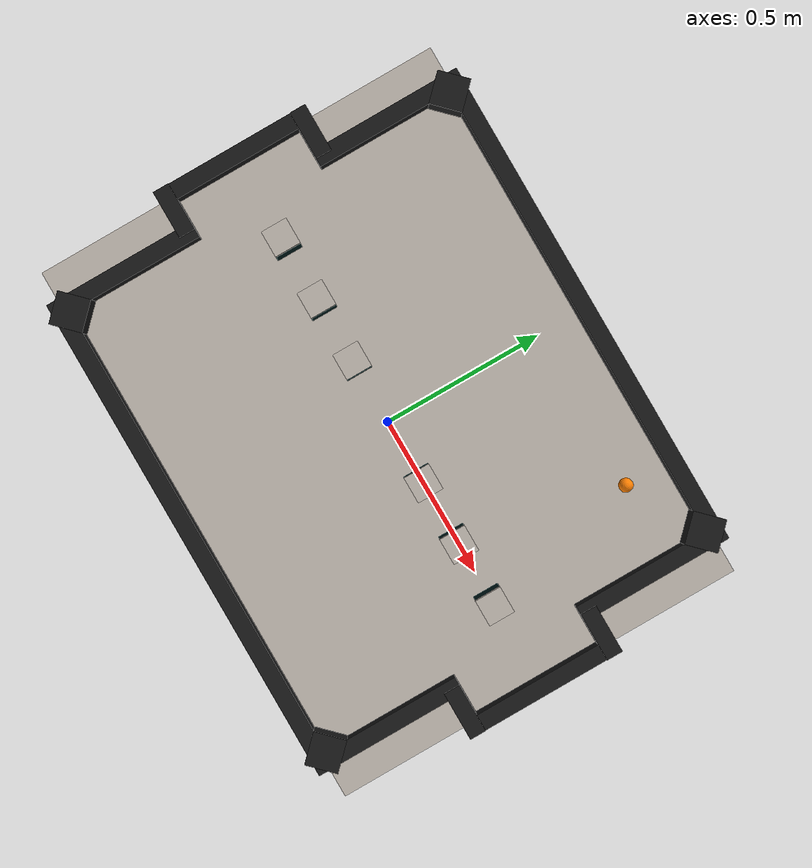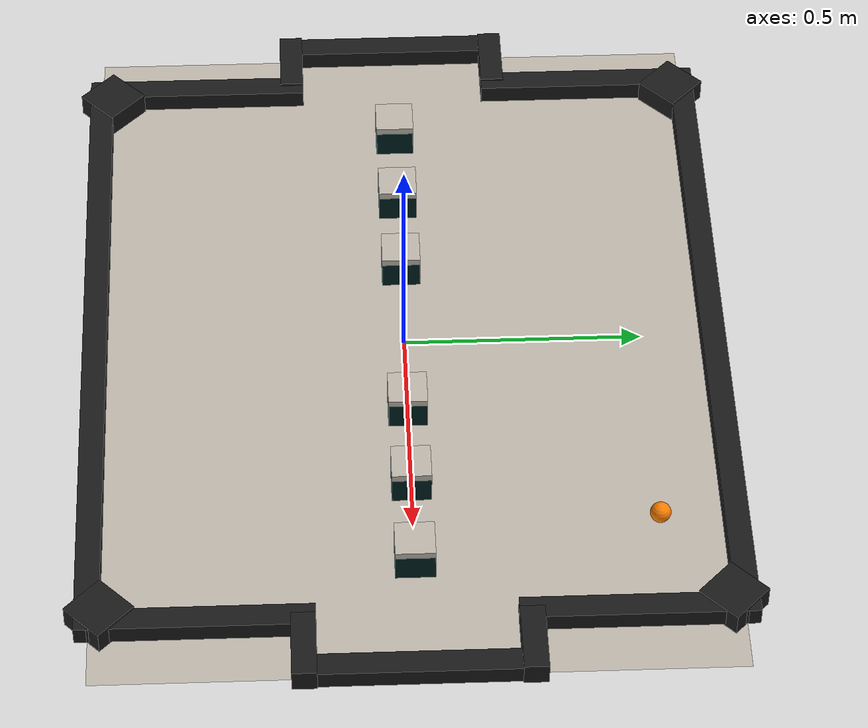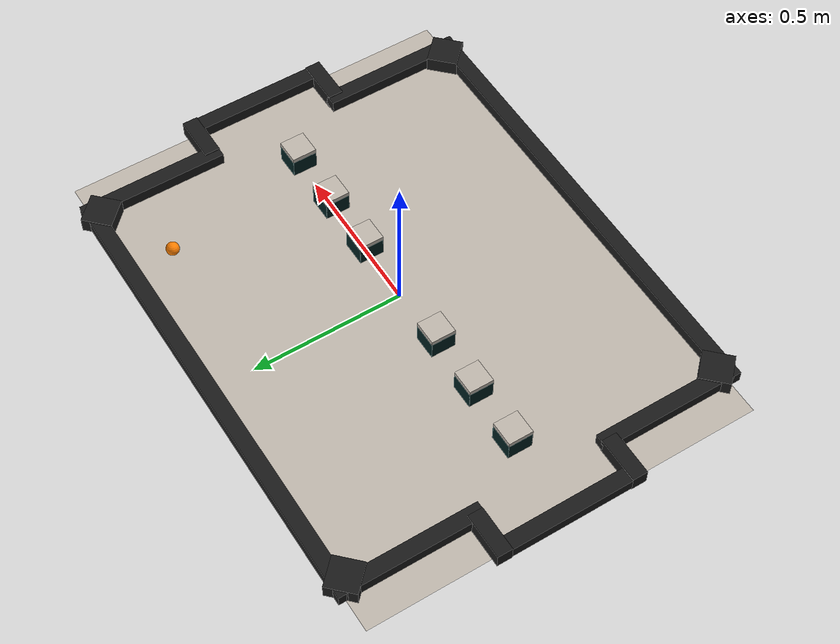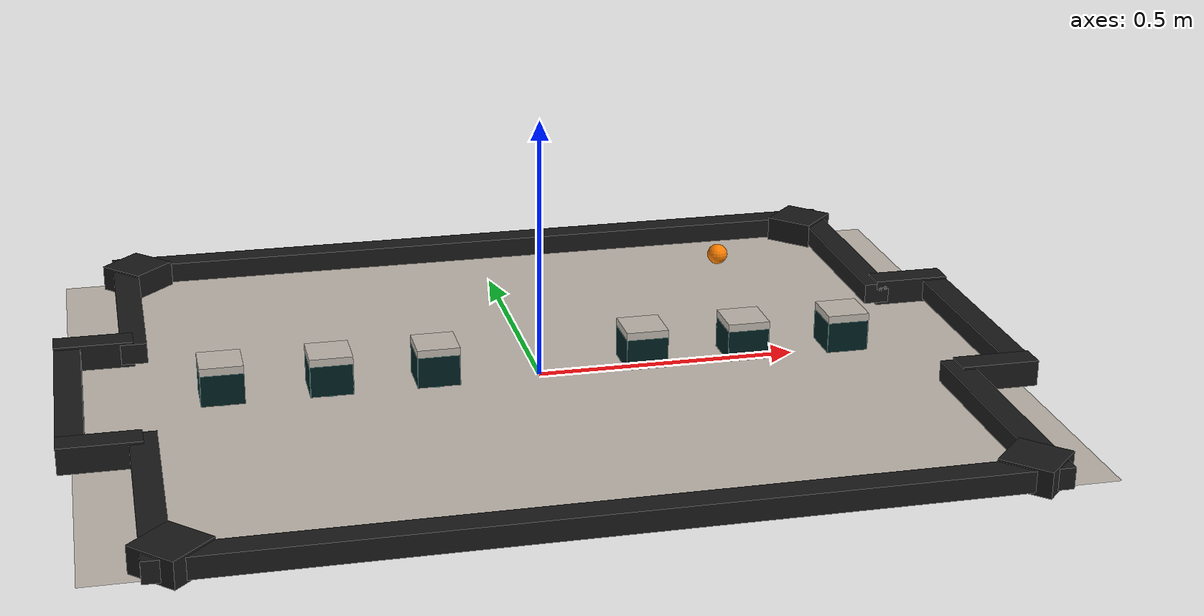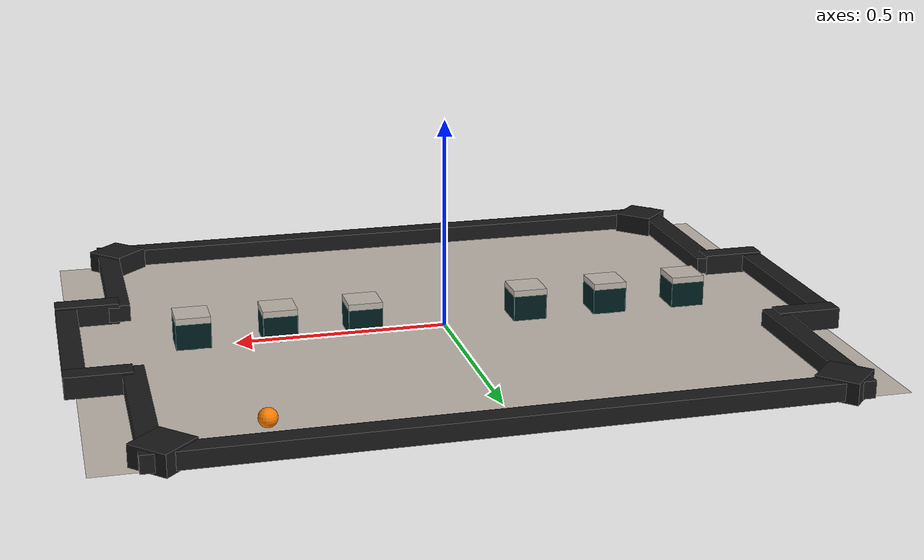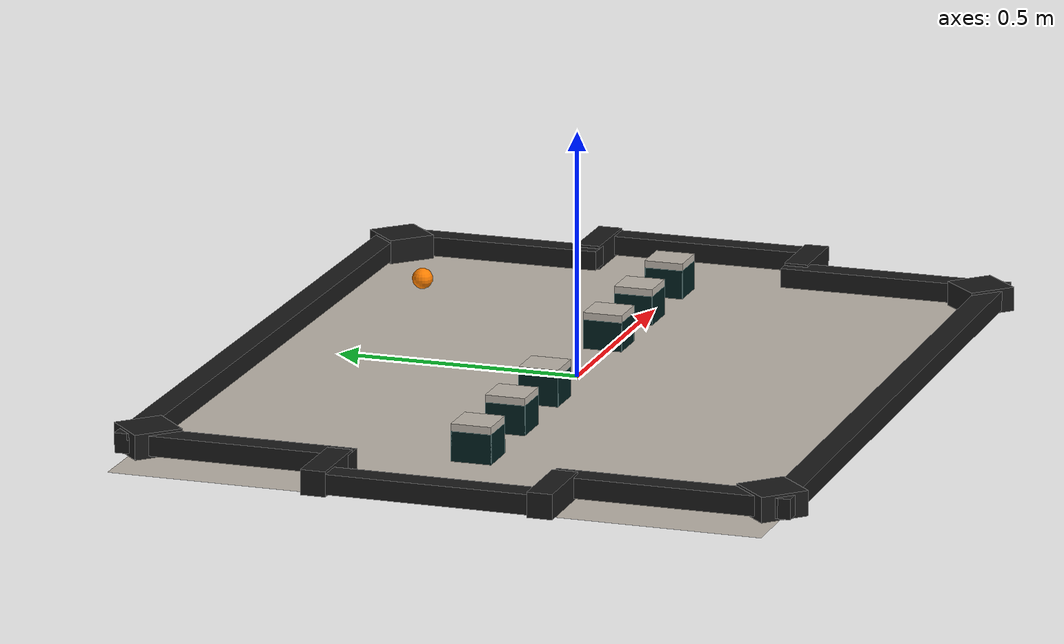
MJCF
<?xml version="1.0" encoding="utf-8"?>
<mujoco>
  <compiler angle="radian" inertiafromgeom="auto"/>
  <option timestep="0.001"/>
  <size njmax="800" nconmax="200"/>
  <default>
    <geom condim="3"/>
  </default>

  <asset>
    <texture name="Field" file="textures/Field.png" gridsize="1 1" builtin="none" type="2d"/>
    <texture name="Tag1" builtin="none" type="cube" fileright="textures/Black.png" fileleft="textures/Black.png" fileup="textures/Black.png"
    filedown="textures/Black.png" filefront="textures/Ytag1.png" fileback="textures/Black.png" />
    <texture name="Tag2" builtin="none" type="cube" fileright="textures/Black.png" fileleft="textures/Black.png" fileup="textures/Black.png"
    filedown="textures/Black.png" filefront="textures/Ytag2.png" fileback="textures/Black.png" />
    <texture name="Tag3" builtin="none" type="cube" fileright="textures/Black.png" fileleft="textures/Black.png" fileup="textures/Black.png"
    filedown="textures/Black.png" filefront="textures/Ytag3.png" fileback="textures/Black.png" />
    <texture name="Tag4" builtin="none" type="cube" fileright="textures/Btag1.png" fileleft="textures/Black.png" fileup="textures/Black.png"
    filedown="textures/Black.png" filefront="textures/Btag1.png" fileback="textures/Black.png" />
    <texture name="Tag5" builtin="none" type="cube" fileright="textures/Black.png" fileleft="textures/Black.png" fileup="textures/Black.png"
    filedown="textures/Black.png" filefront="textures/Btag2.png" fileback="textures/Black.png" />
    <texture name="Tag6" builtin="none" type="cube" fileright="textures/Black.png" fileleft="textures/Black.png" fileup="textures/Black.png"
    filedown="textures/Black.png" filefront="textures/Btag3.png" fileback="textures/Black.png" />
    <texture name="bodytex" builtin="none" type="cube" file="textures/Black.png"/>
    <material name="field_paint" rgba="1 1 1 1" specular="0" emission="0" texture="Field" shininess="0.2"/>
    <material name="wall_material" rgba="0.1 0.1 0.1 1" emission="0" shininess="0.2"/>
    <material name="body" rgba="0 1 1 1" texture="bodytex" shininess="0"/>
    <material name="tag01" rgba="1 1 1 1" texture="Tag1" emission="0" shininess="0.2"/>
    <material name="tag02" rgba="1 1 1 1" texture="Tag2" emission="0" shininess="0.2"/>
    <material name="tag03" rgba="1 1 1 1" texture="Tag3" emission="0" shininess="0.2"/>
    <material name="tag04" rgba="1 1 1 1" texture="Tag4" emission="0" shininess="0.2"/>
    <material name="tag05" rgba="1 1 1 1" texture="Tag5" emission="0" shininess="0.2"/>
    <material name="tag06" rgba="1 1 1 1" texture="Tag6" emission="0" shininess="0.2"/>
    <material name="ball_surf" rgba="1 0.5 0 1" emission="0.3" shininess="0.8"/>
  </asset>

  <!--PISTA-->
  <worldbody>
    <geom conaffinity="1" contype="0" name="field" pos="0 0 0" size="0.875 0.65 10" material="field_paint" type="plane"/>
    <geom conaffinity="1" contype="0" name="upper_wall" pos="0 0.65 0.025" size="0.775 0.025 0.02"  material="wall_material" type="box"/>
    <geom conaffinity="1" contype="0" name="lower_wall" pos="0 -0.65 0.025" size="0.775 0.025 0.02" material="wall_material" type="box"/>
    <geom conaffinity="1" contype="0" name="left_goal" pos="-0.875 0 0.025" size="0.025 0.2 0.02" material="wall_material" type="box"/>
    <geom conaffinity="1" contype="0" name="right_goal" pos="0.875 0 0.025" size="0.025 0.2 0.02" material="wall_material" type="box"/>
    <geom conaffinity="1" contype="0" name="upper_right_corner" pos="0.75 0.425 0.025" size="0.025 0.225 0.02" material="wall_material" type="box"/>
    <geom conaffinity="1" contype="0" name="lower_right_corner" pos="0.75 -0.425 0.025" size="0.025 0.225 0.02" material="wall_material" type="box"/>
    <geom conaffinity="1" contype="0" name="upper_left_corner" pos="-0.75 0.425 0.025" size="0.025 0.225 0.02" material="wall_material" type="box"/>
    <geom conaffinity="1" contype="0" name="lower_left_corner" pos="-0.75 -0.425 0.025" size="0.025 0.225 0.02" material="wall_material" type="box"/>
    <geom conaffinity="1" contype="0" name="upper_right_pole" pos="0.825 0.225 0.025" size="0.075 0.025 0.025" material="wall_material" type="box"/>
    <geom conaffinity="1" contype="0" name="lower_right_pole" pos="0.825 -0.225 0.025" size="0.075 0.025 0.025" material="wall_material" type="box"/>
    <geom conaffinity="1" contype="0" name="upper_left_pole" pos="-0.825 0.225 0.025" size="0.075 0.025 0.025" material="wall_material" type="box"/>
    <geom conaffinity="1" contype="0" name="lower_left_pole" pos="-0.825 -0.225 0.025" size="0.075 0.025 0.025" material="wall_material" type="box"/>
    <geom conaffinity="1" contype="0" name="lower_left_triangle" pos="-0.725 -0.625 0.025" axisangle="0 0 1 0.785398163" size="0.04949747468 0.04949747468 0.025" material="wall_material" type="box"/>
    <geom conaffinity="1" contype="0" name="upper_left_triangle" pos="-0.725 0.625 0.025" axisangle="0 0 1 0.785398163" size="0.04949747468 0.04949747468 0.025" material="wall_material" type="box"/>
    <geom conaffinity="1" contype="0" name="lower_right_triangle" pos="0.725 -0.625 0.025" axisangle="0 0 1 0.785398163" size="0.04949747468 0.04949747468 0.025" material="wall_material" type="box"/>
    <geom conaffinity="1" contype="0" name="upper_right_triangle" pos="0.725 0.625 0.025" axisangle="0 0 1 0.785398163" size="0.04949747468 0.04949747468 0.025" material="wall_material" type="box"/>

  </worldbody>
  <!--PISTA-->

  <!--LUZES-->
  <worldbody>
    <light name="light_01" mode="fixed" pos="0.8 0 2" dir="-0.75 0 -1" cutoff="45"/>
    <light name="light_02" mode="fixed" pos="-0.8 0 2" dir="0.75 0 -1" cutoff="45"/>
  </worldbody>
  <!--LUZES-->

  <!--CAMERA-->
  <worldbody>
    <camera name="camera" mode="fixed" pos="0 0 2" fovy="38.58"/>
  </worldbody>
  <!--CAMERA-->

  <!--BOLA-->
  <worldbody>
    <body name="ball" pos="0.5 0.5 0.022">
      <joint type="free" name="Ball"/>
      <inertial pos="0 0 0" mass="46" diaginertia="0.008387134 0.008387134 0.008387134"/>
      <geom conaffinity="1" contype="1" size="0.02135" material="ball_surf" type="sphere"/>
    </body>
  </worldbody>
  <!--BOLA-->

  <!--ROBOS-->
  <worldbody>
    <body name="robot_01" pos="-0.2 0 0.04">
      <joint type="free" name="Robot_01"/>
      <inertial pos="0 0 -0.02" mass="396" diaginertia="0.132 0.2244 0.33"/>
      <geom conaffinity="1" contype="1"  size="0.04 0.03 0.03" rgba="0 0 1 1" type="box"/>
      <body name="left_wheel_01" pos="0 0.035 -0.002" quat="0.707141 0.707073 0 0" >
        <joint name="left_wheel_joint_01" pos="0 0 0" axis="0 0 -1" type="hinge"/>
        <inertial pos="0 0 0" mass="12" diaginertia="0.002736 0.002736 0.0054"/>
        <geom conaffinity="1" contype="1" size="0.03 0.003" rgba="0 1 1 1" type="cylinder"/>
      </body>
      <body name="right_wheel_01" pos="0 -0.035 -0.002" quat="0.707141 0.707073 0 0" >
        <joint name="right_wheel_joint_01" pos="0 0 0" axis="0 0 -1" type="hinge"/>
        <inertial pos="0 0 0" mass="12" diaginertia="0.002736 0.002736 0.0054"/>
        <geom conaffinity="1" contype="1" size="0.03 0.003" rgba="0 1 1 1" type="cylinder"/>
      </body>
      <body name="uniform_01" pos="0 0 0.0375">
        <geom name="hat01" conaffinity="1" contype="1" size="0.0405 0.0405 0.0075" material="tag01" type="box"/>
        <body name="front_01" pos="0.04 0 -0.0375">
          <geom conaffinity="1" contype="1" size="0.0005 0.0405 0.03" material="body" type="box"/>
        </body>
        <body name="back_01" pos="-0.04 0 -0.0375">
          <geom conaffinity="1" contype="1" size="0.0005 0.0405 0.03" material="body" type="box"/>
        </body>
        <body name="left_01" pos="0 0.04 -0.0375">
          <geom conaffinity="1" contype="1" size="0.0405 0.0005 0.03" material="body" type="box"/>
        </body>
        <body name="right_01" pos="0 -0.04 -0.0375">
          <geom conaffinity="1" contype="1" size="0.0405 0.0005 0.03" material="body" type="box"/>
        </body>
      </body>
    </body>
  </worldbody>

  <worldbody>
    <body name="robot_02" pos="-0.4 0 0.04">
      <joint type="free" name="Robot_02"/>
      <inertial pos="0 0 -0.02" mass="396" diaginertia="0.132 0.2244 0.33"/>
      <geom conaffinity="1" contype="1" size="0.04 0.03 0.03" rgba="0 0 1 1" type="box"/>
      <body name="left_wheel_02" pos="0 0.035 -0.002" quat="0.707141 0.707073 0 0" >
        <joint name="left_wheel_joint_02" pos="0 0 0" axis="0 0 -1" type="hinge"/>
        <inertial pos="0 0 0" mass="12" diaginertia="0.002736 0.002736 0.0054"/>
        <geom conaffinity="1" contype="1" size="0.03 0.003" rgba="0 1 1 1" type="cylinder"/>
      </body>
      <body name="right_wheel_02" pos="0 -0.035 -0.002" quat="0.707141 0.707073 0 0" >
        <joint name="right_wheel_joint_02" pos="0 0 0" axis="0 0 -1" type="hinge"/>
        <inertial pos="0 0 0" mass="12" diaginertia="0.002736 0.002736 0.0054"/>
        <geom conaffinity="1" contype="1" size="0.03 0.003" rgba="0 1 1 1" type="cylinder"/>
      </body>
      <body name="uniform_02" pos="0 0 0.0375">
        <geom name="hat02" conaffinity="1" contype="1" size="0.0405 0.0405 0.0075" material="tag02" type="box"/>
        <body name="front_02" pos="0.04 0 -0.0375">
          <geom conaffinity="1" contype="1" size="0.0005 0.0405 0.03" material="body" type="box"/>
        </body>
        <body name="back_02" pos="-0.04 0 -0.0375">
          <geom conaffinity="1" contype="1" size="0.0005 0.0405 0.03" material="body" type="box"/>
        </body>
        <body name="left_02" pos="0 0.04 -0.0375">
          <geom conaffinity="1" contype="1" size="0.0405 0.0005 0.03" material="body" type="box"/>
        </body>
        <body name="right_02" pos="0 -0.04 -0.0375">
          <geom conaffinity="1" contype="1" size="0.0405 0.0005 0.03" material="body" type="box"/>
        </body>
      </body>
    </body>
  </worldbody>

  <worldbody>
    <body name="robot_03" pos="-0.6 0 0.04">
      <joint type="free" name="Robot_03"/>
      <inertial pos="0 0 -0.02" mass="396" diaginertia="0.132 0.2244 0.33"/>
      <geom conaffinity="1" contype="1"  size="0.04 0.03 0.03" rgba="0 0 1 1" type="box"/>
      <body name="left_wheel_03" pos="0 0.035 -0.002" quat="0.707141 0.707073 0 0" >
        <joint name="left_wheel_joint_03" pos="0 0 0" axis="0 0 -1" type="hinge"/>
        <inertial pos="0 0 0" mass="12" diaginertia="0.002736 0.002736 0.0054"/>
        <geom conaffinity="1" contype="1" size="0.03 0.003" rgba="0 1 1 1" type="cylinder"/>
      </body>
      <body name="right_wheel_03" pos="0 -0.035 -0.002" quat="0.707141 0.707073 0 0" >
        <joint name="right_wheel_joint_03" pos="0 0 0" axis="0 0 -1" type="hinge"/>
        <inertial pos="0 0 0" mass="12" diaginertia="0.002736 0.002736 0.0054"/>
        <geom conaffinity="1" contype="1" size="0.03 0.003" rgba="0 1 1 1" type="cylinder"/>
      </body>
      <body name="uniform_03" pos="0 0 0.0375">
        <geom name="hat03" conaffinity="1" contype="1" size="0.0405 0.0405 0.0075" material="tag03" type="box"/>
        <body name="front_03" pos="0.04 0 -0.0375">
          <geom conaffinity="1" contype="1" size="0.0005 0.0405 0.03" material="body" type="box"/>
        </body>
        <body name="back_03" pos="-0.04 0 -0.0375">
          <geom conaffinity="1" contype="1" size="0.0005 0.0405 0.03" material="body" type="box"/>
        </body>
        <body name="left_03" pos="0 0.04 -0.0375">
          <geom conaffinity="1" contype="1" size="0.0405 0.0005 0.03" material="body" type="box"/>
        </body>
        <body name="right_03" pos="0 -0.04 -0.0375">
          <geom conaffinity="1" contype="1" size="0.0405 0.0005 0.03" material="body" type="box"/>
        </body>
      </body>
    </body>
  </worldbody>

  <worldbody>
    <body name="robot_04" pos="0.2 0 0.04" axisangle="0 0 1 0">
      <joint type="free" name="Robot_04"/>
      <inertial pos="0 0 -0.02" mass="396" diaginertia="0.132 0.2244 0.33"/>
      <geom conaffinity="1" contype="1"  size="0.04 0.03 0.03" rgba="0 0 1 1" type="box"/>
      <body name="left_wheel_04" pos="0 0.035 -0.002" quat="0.707141 0.707073 0 0" >
        <joint name="left_wheel_joint_04" pos="0 0 0" axis="0 0 -1" type="hinge"/>
        <inertial pos="0 0 0" mass="12" diaginertia="0.002736 0.002736 0.0054"/>
        <geom conaffinity="1" contype="1" size="0.03 0.003" rgba="0 1 1 1" type="cylinder"/>
      </body>
      <body name="right_wheel_04" pos="0 -0.035 -0.002" quat="0.707141 0.707073 0 0" >
        <joint name="right_wheel_joint_04" pos="0 0 0" axis="0 0 -1" type="hinge"/>
        <inertial pos="0 0 0" mass="12" diaginertia="0.002736 0.002736 0.0054"/>
        <geom conaffinity="1" contype="1" size="0.03 0.003" rgba="0 1 1 1" type="cylinder"/>
      </body>
      <body name="uniform_04" pos="0 0 0.0375">
        <geom name="hat04" conaffinity="1" contype="1" size="0.0405 0.0405 0.0075" material="tag04" type="box"/>
        <body name="front_04" pos="0.04 0 -0.0375">
          <geom conaffinity="1" contype="1" size="0.0005 0.0405 0.03" material="body" type="box"/>
        </body>
        <body name="back_04" pos="-0.04 0 -0.0375">
          <geom conaffinity="1" contype="1" size="0.0005 0.0405 0.03" material="body" type="box"/>
        </body>
        <body name="left_04" pos="0 0.04 -0.0375">
          <geom conaffinity="1" contype="1" size="0.0405 0.0005 0.03" material="body" type="box"/>
        </body>
        <body name="right_04" pos="0 -0.04 -0.0375">
          <geom conaffinity="1" contype="1" size="0.0405 0.0005 0.03" material="body" type="box"/>
        </body>
      </body>
    </body>
  </worldbody>

  <worldbody>
    <body name="robot_05" pos="0.4 0 0.04" axisangle="0 0 1 0">
      <joint type="free" name="Robot_05"/>
      <inertial pos="0 0 -0.02" mass="396" diaginertia="0.132 0.2244 0.33"/>
      <geom conaffinity="1" contype="1"  size="0.04 0.03 0.03" rgba="0 0 1 1" type="box"/>
      <body name="left_wheel_05" pos="0 0.035 -0.002" quat="0.707141 0.707073 0 0" >
        <joint name="left_wheel_joint_05" pos="0 0 0" axis="0 0 -1" type="hinge"/>
        <inertial pos="0 0 0" mass="12" diaginertia="0.002736 0.002736 0.0054"/>
        <geom conaffinity="1" contype="1" size="0.03 0.003" rgba="0 1 1 1" type="cylinder"/>
      </body>
      <body name="right_wheel_05" pos="0 -0.035 -0.002" quat="0.707141 0.707073 0 0" >
        <joint name="right_wheel_joint_05" pos="0 0 0" axis="0 0 -1" type="hinge"/>
        <inertial pos="0 0 0" mass="12" diaginertia="0.002736 0.002736 0.0054"/>
        <geom conaffinity="1" contype="1" size="0.03 0.003" rgba="0 1 1 1" type="cylinder"/>
      </body>
      <body name="uniform_05" pos="0 0 0.0375">
        <geom name="hat05" conaffinity="1" contype="1" size="0.0405 0.0405 0.0075" material="tag05" type="box"/>
        <body name="front_05" pos="0.04 0 -0.0375">
          <geom conaffinity="1" contype="1" size="0.0005 0.0405 0.03" material="body" type="box"/>
        </body>
        <body name="back_05" pos="-0.04 0 -0.0375">
          <geom conaffinity="1" contype="1" size="0.0005 0.0405 0.03" material="body" type="box"/>
        </body>
        <body name="left_05" pos="0 0.04 -0.0375">
          <geom conaffinity="1" contype="1" size="0.0405 0.0005 0.03" material="body" type="box"/>
        </body>
        <body name="right_05" pos="0 -0.04 -0.0375">
          <geom conaffinity="1" contype="1" size="0.0405 0.0005 0.03" material="body" type="box"/>
        </body>
      </body>
    </body>
  </worldbody>

  <worldbody>
    <body name="robot_06" pos="0.6 0 0.04" axisangle="0 0 1 0">
      <joint type="free" name="Robot_06"/>
      <inertial pos="0 0 -0.02" mass="396" diaginertia="0.132 0.2244 0.33"/>
      <geom conaffinity="1" contype="1"  size="0.04 0.03 0.03" rgba="0 0 1 1" type="box"/>
      <body name="left_wheel_06" pos="0 0.035 -0.002" quat="0.707141 0.707073 0 0" >
        <joint name="left_wheel_joint_06" pos="0 0 0" axis="0 0 -1" type="hinge"/>
        <inertial pos="0 0 0" mass="12" diaginertia="0.002736 0.002736 0.0054"/>
        <geom conaffinity="1" contype="1" size="0.03 0.003" rgba="0 1 1 1" type="cylinder"/>
      </body>
      <body name="right_wheel_06" pos="0 -0.035 -0.002" quat="0.707141 0.707073 0 0" >
        <joint name="right_wheel_joint_06" pos="0 0 0" axis="0 0 -1" type="hinge"/>
        <inertial pos="0 0 0" mass="12" diaginertia="0.002736 0.002736 0.0054"/>
        <geom conaffinity="1" contype="1" size="0.03 0.003" rgba="0 1 1 1" type="cylinder"/>
      </body>
      <body name="uniform_06" pos="0 0 0.0375">
        <geom name="hat06" conaffinity="1" contype="1" size="0.0405 0.0405 0.0075" material="tag06" type="box"/>
        <body name="front_06" pos="0.04 0 -0.0375">
          <geom conaffinity="1" contype="1" size="0.0005 0.0405 0.03" material="body" type="box"/>
        </body>
        <body name="back_06" pos="-0.04 0 -0.0375">
          <geom conaffinity="1" contype="1" size="0.0005 0.0405 0.03" material="body" type="box"/>
        </body>
        <body name="left_06" pos="0 0.04 -0.0375">
          <geom conaffinity="1" contype="1" size="0.0405 0.0005 0.03" material="body" type="box"/>
        </body>
        <body name="right_06" pos="0 -0.04 -0.0375">
          <geom conaffinity="1" contype="1" size="0.0405 0.0005 0.03" material="body" type="box"/>
        </body>
      </body>
    </body>
  </worldbody>

  <actuator>
    <velocity name="l1" joint="left_wheel_joint_01" kv="1"/>
    <velocity name="r1" joint="right_wheel_joint_01" kv="1"/>
    <velocity name="l2" joint="left_wheel_joint_02" kv="1"/>
    <velocity name="r2" joint="right_wheel_joint_02" kv="1"/>
    <velocity name="l3" joint="left_wheel_joint_03" kv="1"/>
    <velocity name="r3" joint="right_wheel_joint_03" kv="1"/>
    <velocity name="l4" joint="left_wheel_joint_04" kv="1"/>
    <velocity name="r4" joint="right_wheel_joint_04" kv="1"/>
    <velocity name="l5" joint="left_wheel_joint_05" kv="1"/>
    <velocity name="r5" joint="right_wheel_joint_05" kv="1"/>
    <velocity name="l6" joint="left_wheel_joint_06" kv="1"/>
    <velocity name="r6" joint="right_wheel_joint_06" kv="1"/>
  </actuator>
</mujoco>
